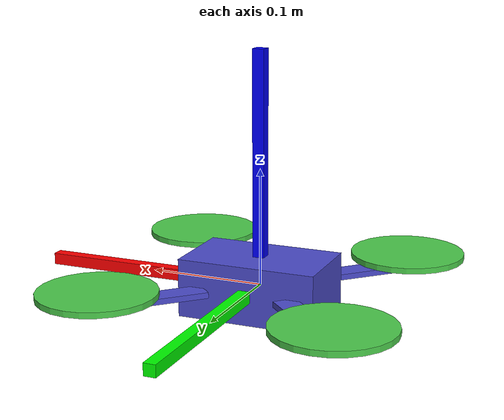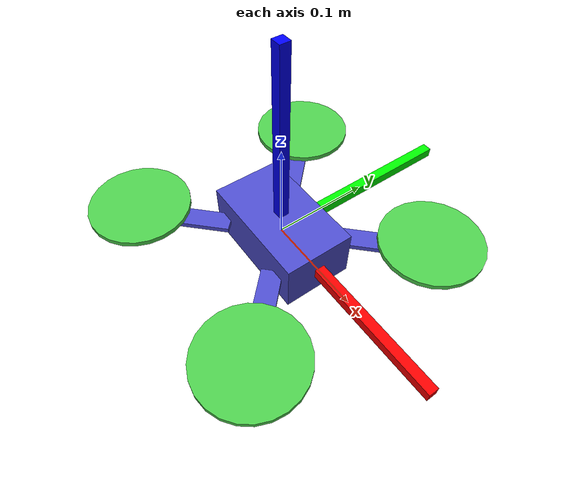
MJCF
<mujoco model="quadrotor0">
    <compiler inertiafromgeom="true" coordinate="local" angle="degree"/>
    <option integrator="Euler" timestep="0.002" gravity="0 0 -9.81" density="1.225" viscosity="1e-5" />
    <worldbody>
        <body name="quadrotor" pos="0 0 0" >
            <geom name="core" type="box" pos="0 0 0" quat = "1. 0. 0. 0" size="0.06 0.035 0.025"  rgba="0.3 0.3 0.8 1" mass = "0.1"/>

            <geom name="arm0" type="box" pos=".071 0.071 0.0" size="0.05 0.01 0.0025"  quat = ".924 0.0 0.0 0.383" rgba="0.3 0.3 0.8 1" density="1000"/>
            <geom name="arm1" type="box" pos=".071 -0.071 0.0" size="0.05 0.01 0.0025"  quat = ".383 0.0 0.0 0.924" rgba="0.3 0.3 0.8 1" density="1000"/>
            <geom name="arm2" type="box" pos="-0.071 -0.071 0.0" size="0.05 0.01 0.0025"  quat = "-.383 0.0 0.0 0.924" rgba="0.3 0.3 0.8 1" density="1000"/>
            <geom name="arm3" type="box" pos="-.071 0.071 0.0" size="0.05 0.01 0.0025"  quat = ".924 0.0 0.0 -0.383" rgba="0.3 0.3 0.8 1" density="1000"/>

            <joint name="root"   type="free" damping="0" armature="0" pos="0 0 0" />

            <!-- Motor sites to attach motor actuators -->
            <site name="motor" type="cylinder" pos="0 0 0"  size="0.01 0.0025"  quat = "1.0 0.0 0.0 0." rgba="0.3 0.8 0.3 1"/>

            <!-- Thruster geometries for collisions since site's are excluded from collision checking -->
            <geom name="thruster0" type="cylinder" pos=" 0.1  0.1  0.01" size="0.05 0.0025"  quat = "1.0 0.0 0.0 0." rgba="0.3 0.8 0.3 1" density="1000"/>
            <geom name="thruster1" type="cylinder" pos=" 0.1 -0.1  0.01" size="0.05 0.0025"  quat = "1.0 0.0 0.0 0." rgba="0.3 0.8 0.3 1" density="1000"/>
            <geom name="thruster2" type="cylinder" pos="-0.1 -0.1  0.01" size="0.05 0.0025"  quat = "1.0 0.0 0.0 0." rgba="0.3 0.8 0.3 1" density="1000"/>
            <geom name="thruster3" type="cylinder" pos="-0.1  0.1  0.01" size="0.05 0.0025"  quat = "1.0 0.0 0.0 0." rgba="0.3 0.8 0.3 1" density="1000"/>

            <!-- Visualization of the coordinate frame -->
            <site name="qcX" type="box" pos="0.1 0.0 0.0" size="0.1 0.005 0.005"  quat = " 1.000  0.0  0.0    0."     rgba="1 0 0 1" />
            <site name="qcY" type="box" pos="0.0 0.1 0.0" size="0.1 0.005 0.005"  quat = " 0.707  0.0  0.0    0.707"  rgba="0 1 0 1" />
            <site name="qcZ" type="box" pos="0.0 0.0 0.1" size="0.1 0.005 0.005"  quat = "-0.707  0.0  0.707  0."     rgba="0 0 1 1" />
        </body>
    </worldbody>
    <actuator>
        <motor site="motor" ctrllimited="true" ctrlrange="0.0 100.0" gear="0  0. 1. 0. 0. 0."/>
        <motor site="motor" ctrllimited="true" ctrlrange="0.0 100.0" gear="0  0. 0. 0.05 0. 0."/>
        <motor site="motor" ctrllimited="true" ctrlrange="0.0 100.0" gear="0  0. 0. 0. 0.05 0."/>
        <motor site="motor" ctrllimited="true" ctrlrange="0.0 100.0" gear="0  0. 0. 0. 0. 0.05"/>
    </actuator>

</mujoco>
